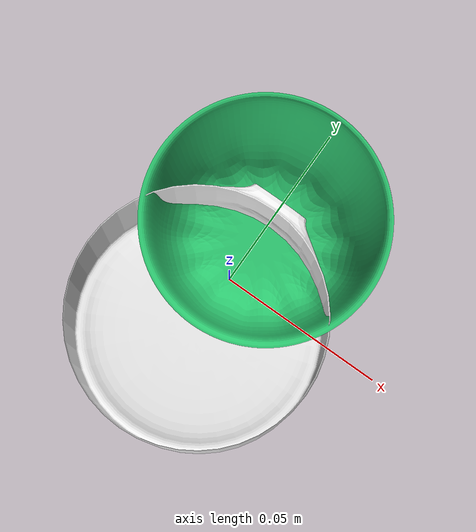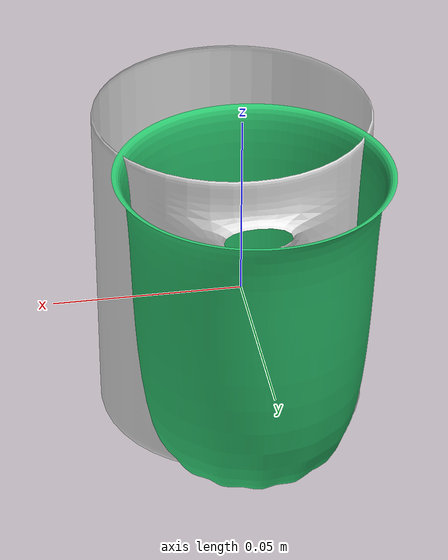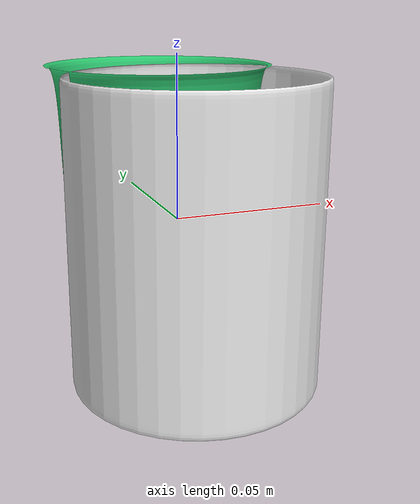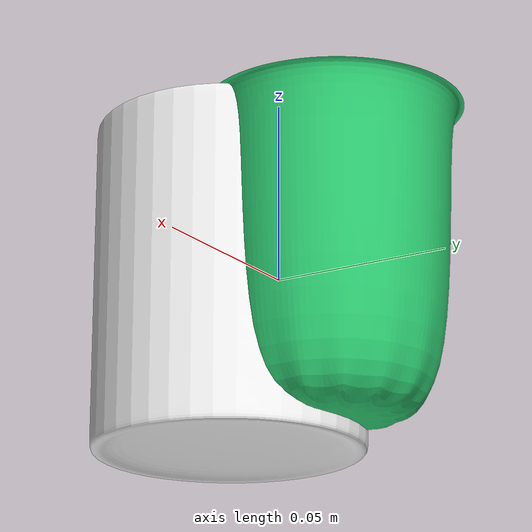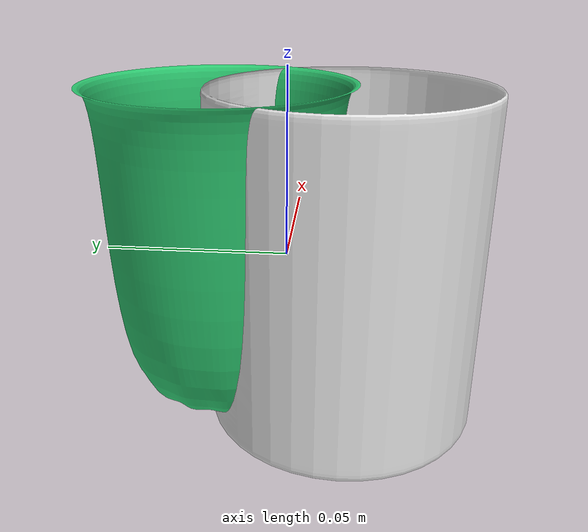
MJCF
<mujoco model="mug_12">
  <asset>
    <mesh file="visual/model_normalized_0.obj" name="model_normalized_0_vis" scale="0.10500000000000001 0.10500000000000001 0.10500000000000001" refquat="-0.7071067811865477 0.0 0.0 0.7071067811865474"/>
    <mesh file="visual/model_normalized_1.obj" name="model_normalized_1_vis" scale="0.10500000000000001 0.10500000000000001 0.10500000000000001" refquat="-0.7071067811865477 0.0 0.0 0.7071067811865474"/>
    <mesh file="collision/model_normalized_collision_22.obj" name="model_normalized_collision_22._coll" scale="0.10500000000000001 0.10500000000000001 0.10500000000000001" refquat="-0.7071067811865477 0.0 0.0 0.7071067811865474"/>
    <mesh file="collision/model_normalized_collision_23.obj" name="model_normalized_collision_23._coll" scale="0.10500000000000001 0.10500000000000001 0.10500000000000001" refquat="-0.7071067811865477 0.0 0.0 0.7071067811865474"/>
    <mesh file="collision/model_normalized_collision_21.obj" name="model_normalized_collision_21._coll" scale="0.10500000000000001 0.10500000000000001 0.10500000000000001" refquat="-0.7071067811865477 0.0 0.0 0.7071067811865474"/>
    <mesh file="collision/model_normalized_collision_20.obj" name="model_normalized_collision_20._coll" scale="0.10500000000000001 0.10500000000000001 0.10500000000000001" refquat="-0.7071067811865477 0.0 0.0 0.7071067811865474"/>
    <mesh file="collision/model_normalized_collision_24.obj" name="model_normalized_collision_24._coll" scale="0.10500000000000001 0.10500000000000001 0.10500000000000001" refquat="-0.7071067811865477 0.0 0.0 0.7071067811865474"/>
    <mesh file="collision/model_normalized_collision_30.obj" name="model_normalized_collision_30._coll" scale="0.10500000000000001 0.10500000000000001 0.10500000000000001" refquat="-0.7071067811865477 0.0 0.0 0.7071067811865474"/>
    <mesh file="collision/model_normalized_collision_18.obj" name="model_normalized_collision_18._coll" scale="0.10500000000000001 0.10500000000000001 0.10500000000000001" refquat="-0.7071067811865477 0.0 0.0 0.7071067811865474"/>
    <mesh file="collision/model_normalized_collision_19.obj" name="model_normalized_collision_19._coll" scale="0.10500000000000001 0.10500000000000001 0.10500000000000001" refquat="-0.7071067811865477 0.0 0.0 0.7071067811865474"/>
    <mesh file="collision/model_normalized_collision_31.obj" name="model_normalized_collision_31._coll" scale="0.10500000000000001 0.10500000000000001 0.10500000000000001" refquat="-0.7071067811865477 0.0 0.0 0.7071067811865474"/>
    <mesh file="collision/model_normalized_collision_25.obj" name="model_normalized_collision_25._coll" scale="0.10500000000000001 0.10500000000000001 0.10500000000000001" refquat="-0.7071067811865477 0.0 0.0 0.7071067811865474"/>
    <mesh file="collision/model_normalized_collision_27.obj" name="model_normalized_collision_27._coll" scale="0.10500000000000001 0.10500000000000001 0.10500000000000001" refquat="-0.7071067811865477 0.0 0.0 0.7071067811865474"/>
    <mesh file="collision/model_normalized_collision_26.obj" name="model_normalized_collision_26._coll" scale="0.10500000000000001 0.10500000000000001 0.10500000000000001" refquat="-0.7071067811865477 0.0 0.0 0.7071067811865474"/>
    <mesh file="collision/model_normalized_collision_9.obj" name="model_normalized_collision_9._coll" scale="0.10500000000000001 0.10500000000000001 0.10500000000000001" refquat="-0.7071067811865477 0.0 0.0 0.7071067811865474"/>
    <mesh file="collision/model_normalized_collision_8.obj" name="model_normalized_collision_8._coll" scale="0.10500000000000001 0.10500000000000001 0.10500000000000001" refquat="-0.7071067811865477 0.0 0.0 0.7071067811865474"/>
    <mesh file="collision/model_normalized_collision_6.obj" name="model_normalized_collision_6._coll" scale="0.10500000000000001 0.10500000000000001 0.10500000000000001" refquat="-0.7071067811865477 0.0 0.0 0.7071067811865474"/>
    <mesh file="collision/model_normalized_collision_7.obj" name="model_normalized_collision_7._coll" scale="0.10500000000000001 0.10500000000000001 0.10500000000000001" refquat="-0.7071067811865477 0.0 0.0 0.7071067811865474"/>
    <mesh file="collision/model_normalized_collision_5.obj" name="model_normalized_collision_5._coll" scale="0.10500000000000001 0.10500000000000001 0.10500000000000001" refquat="-0.7071067811865477 0.0 0.0 0.7071067811865474"/>
    <mesh file="collision/model_normalized_collision_4.obj" name="model_normalized_collision_4._coll" scale="0.10500000000000001 0.10500000000000001 0.10500000000000001" refquat="-0.7071067811865477 0.0 0.0 0.7071067811865474"/>
    <mesh file="collision/model_normalized_collision_0.obj" name="model_normalized_collision_0._coll" scale="0.10500000000000001 0.10500000000000001 0.10500000000000001" refquat="-0.7071067811865477 0.0 0.0 0.7071067811865474"/>
    <mesh file="collision/model_normalized_collision_1.obj" name="model_normalized_collision_1._coll" scale="0.10500000000000001 0.10500000000000001 0.10500000000000001" refquat="-0.7071067811865477 0.0 0.0 0.7071067811865474"/>
    <mesh file="collision/model_normalized_collision_3.obj" name="model_normalized_collision_3._coll" scale="0.10500000000000001 0.10500000000000001 0.10500000000000001" refquat="-0.7071067811865477 0.0 0.0 0.7071067811865474"/>
    <mesh file="collision/model_normalized_collision_2.obj" name="model_normalized_collision_2._coll" scale="0.10500000000000001 0.10500000000000001 0.10500000000000001" refquat="-0.7071067811865477 0.0 0.0 0.7071067811865474"/>
    <mesh file="collision/model_normalized_collision_17.obj" name="model_normalized_collision_17._coll" scale="0.10500000000000001 0.10500000000000001 0.10500000000000001" refquat="-0.7071067811865477 0.0 0.0 0.7071067811865474"/>
    <mesh file="collision/model_normalized_collision_16.obj" name="model_normalized_collision_16._coll" scale="0.10500000000000001 0.10500000000000001 0.10500000000000001" refquat="-0.7071067811865477 0.0 0.0 0.7071067811865474"/>
    <mesh file="collision/model_normalized_collision_28.obj" name="model_normalized_collision_28._coll" scale="0.10500000000000001 0.10500000000000001 0.10500000000000001" refquat="-0.7071067811865477 0.0 0.0 0.7071067811865474"/>
    <mesh file="collision/model_normalized_collision_14.obj" name="model_normalized_collision_14._coll" scale="0.10500000000000001 0.10500000000000001 0.10500000000000001" refquat="-0.7071067811865477 0.0 0.0 0.7071067811865474"/>
    <mesh file="collision/model_normalized_collision_15.obj" name="model_normalized_collision_15._coll" scale="0.10500000000000001 0.10500000000000001 0.10500000000000001" refquat="-0.7071067811865477 0.0 0.0 0.7071067811865474"/>
    <mesh file="collision/model_normalized_collision_29.obj" name="model_normalized_collision_29._coll" scale="0.10500000000000001 0.10500000000000001 0.10500000000000001" refquat="-0.7071067811865477 0.0 0.0 0.7071067811865474"/>
    <mesh file="collision/model_normalized_collision_11.obj" name="model_normalized_collision_11._coll" scale="0.10500000000000001 0.10500000000000001 0.10500000000000001" refquat="-0.7071067811865477 0.0 0.0 0.7071067811865474"/>
    <mesh file="collision/model_normalized_collision_10.obj" name="model_normalized_collision_10._coll" scale="0.10500000000000001 0.10500000000000001 0.10500000000000001" refquat="-0.7071067811865477 0.0 0.0 0.7071067811865474"/>
    <mesh file="collision/model_normalized_collision_12.obj" name="model_normalized_collision_12._coll" scale="0.10500000000000001 0.10500000000000001 0.10500000000000001" refquat="-0.7071067811865477 0.0 0.0 0.7071067811865474"/>
    <mesh file="collision/model_normalized_collision_13.obj" name="model_normalized_collision_13._coll" scale="0.10500000000000001 0.10500000000000001 0.10500000000000001" refquat="-0.7071067811865477 0.0 0.0 0.7071067811865474"/>
    <material name="Mat.1" specular="0.1" shininess="0.2" rgba="0.171600 0.780000 0.435240 1.0" emission="0.15"/>
    <material name="material.047" specular="0.1" shininess="0.2" rgba="0.930000 0.930000 0.930000 1.0" emission="0.15"/>
  </asset>
  <worldbody>
    <body>
      <body name="object">
        <geom density="0" friction="1.2 0.05 0.001" type="mesh" mesh="model_normalized_0_vis" conaffinity="0" contype="0" group="1" material="Mat.1" mass="0.3"/>
        <geom density="0" friction="1.2 0.05 0.001" type="mesh" mesh="model_normalized_1_vis" conaffinity="0" contype="0" group="1" material="material.047"/>
        <geom density="0" friction="1.2 0.05 0.001" type="mesh" mesh="model_normalized_collision_22._coll" group="3" rgba="0.8 0.8 0.8 0.0"/>
        <geom density="0" friction="1.2 0.05 0.001" type="mesh" mesh="model_normalized_collision_23._coll" group="3" rgba="0.8 0.8 0.8 0.0"/>
        <geom density="0" friction="1.2 0.05 0.001" type="mesh" mesh="model_normalized_collision_21._coll" group="3" rgba="0.8 0.8 0.8 0.0"/>
        <geom density="0" friction="1.2 0.05 0.001" type="mesh" mesh="model_normalized_collision_20._coll" group="3" rgba="0.8 0.8 0.8 0.0"/>
        <geom density="0" friction="1.2 0.05 0.001" type="mesh" mesh="model_normalized_collision_24._coll" group="3" rgba="0.8 0.8 0.8 0.0"/>
        <geom density="0" friction="1.2 0.05 0.001" type="mesh" mesh="model_normalized_collision_30._coll" group="3" rgba="0.8 0.8 0.8 0.0"/>
        <geom density="0" friction="1.2 0.05 0.001" type="mesh" mesh="model_normalized_collision_18._coll" group="3" rgba="0.8 0.8 0.8 0.0"/>
        <geom density="0" friction="1.2 0.05 0.001" type="mesh" mesh="model_normalized_collision_19._coll" group="3" rgba="0.8 0.8 0.8 0.0"/>
        <geom density="0" friction="1.2 0.05 0.001" type="mesh" mesh="model_normalized_collision_31._coll" group="3" rgba="0.8 0.8 0.8 0.0"/>
        <geom density="0" friction="1.2 0.05 0.001" type="mesh" mesh="model_normalized_collision_25._coll" group="3" rgba="0.8 0.8 0.8 0.0"/>
        <geom density="0" friction="1.2 0.05 0.001" type="mesh" mesh="model_normalized_collision_27._coll" group="3" rgba="0.8 0.8 0.8 0.0"/>
        <geom density="0" friction="1.2 0.05 0.001" type="mesh" mesh="model_normalized_collision_26._coll" group="3" rgba="0.8 0.8 0.8 0.0"/>
        <geom density="0" friction="1.2 0.05 0.001" type="mesh" mesh="model_normalized_collision_9._coll" group="3" rgba="0.8 0.8 0.8 0.0"/>
        <geom density="0" friction="1.2 0.05 0.001" type="mesh" mesh="model_normalized_collision_8._coll" group="3" rgba="0.8 0.8 0.8 0.0"/>
        <geom density="0" friction="1.2 0.05 0.001" type="mesh" mesh="model_normalized_collision_6._coll" group="3" rgba="0.8 0.8 0.8 0.0"/>
        <geom density="0" friction="1.2 0.05 0.001" type="mesh" mesh="model_normalized_collision_7._coll" group="3" rgba="0.8 0.8 0.8 0.0"/>
        <geom density="0" friction="1.2 0.05 0.001" type="mesh" mesh="model_normalized_collision_5._coll" group="3" rgba="0.8 0.8 0.8 0.0"/>
        <geom density="0" friction="1.2 0.05 0.001" type="mesh" mesh="model_normalized_collision_4._coll" group="3" rgba="0.8 0.8 0.8 0.0"/>
        <geom density="0" friction="1.2 0.05 0.001" type="mesh" mesh="model_normalized_collision_0._coll" group="3" rgba="0.8 0.8 0.8 0.0"/>
        <geom density="0" friction="1.2 0.05 0.001" type="mesh" mesh="model_normalized_collision_1._coll" group="3" rgba="0.8 0.8 0.8 0.0"/>
        <geom density="0" friction="1.2 0.05 0.001" type="mesh" mesh="model_normalized_collision_3._coll" group="3" rgba="0.8 0.8 0.8 0.0"/>
        <geom density="0" friction="1.2 0.05 0.001" type="mesh" mesh="model_normalized_collision_2._coll" group="3" rgba="0.8 0.8 0.8 0.0"/>
        <geom density="0" friction="1.2 0.05 0.001" type="mesh" mesh="model_normalized_collision_17._coll" group="3" rgba="0.8 0.8 0.8 0.0"/>
        <geom density="0" friction="1.2 0.05 0.001" type="mesh" mesh="model_normalized_collision_16._coll" group="3" rgba="0.8 0.8 0.8 0.0"/>
        <geom density="0" friction="1.2 0.05 0.001" type="mesh" mesh="model_normalized_collision_28._coll" group="3" rgba="0.8 0.8 0.8 0.0"/>
        <geom density="0" friction="1.2 0.05 0.001" type="mesh" mesh="model_normalized_collision_14._coll" group="3" rgba="0.8 0.8 0.8 0.0"/>
        <geom density="0" friction="1.2 0.05 0.001" type="mesh" mesh="model_normalized_collision_15._coll" group="3" rgba="0.8 0.8 0.8 0.0"/>
        <geom density="0" friction="1.2 0.05 0.001" type="mesh" mesh="model_normalized_collision_29._coll" group="3" rgba="0.8 0.8 0.8 0.0"/>
        <geom density="0" friction="1.2 0.05 0.001" type="mesh" mesh="model_normalized_collision_11._coll" group="3" rgba="0.8 0.8 0.8 0.0"/>
        <geom density="0" friction="1.2 0.05 0.001" type="mesh" mesh="model_normalized_collision_10._coll" group="3" rgba="0.8 0.8 0.8 0.0"/>
        <geom density="0" friction="1.2 0.05 0.001" type="mesh" mesh="model_normalized_collision_12._coll" group="3" rgba="0.8 0.8 0.8 0.0"/>
        <geom density="0" friction="1.2 0.05 0.001" type="mesh" mesh="model_normalized_collision_13._coll" group="3" rgba="0.8 0.8 0.8 0.0"/>
      </body>
      <site rgba="0 0 0 0" size="0.005" pos="-1.0192350000000489e-05 0.0004704882000000015 -0.045505232849999994" name="bottom_site"/>
      <site rgba="0 0 0 0" size="0.005" pos="-1.0192350000000489e-05 0.0004704882000000015 0.045505231800000004" name="top_site"/>
      <site rgba="0 0 0 0" size="0.005" pos="0.034246810499999995 0.052484715150000014 -5.249999997236632e-10" name="horizontal_radius_site"/>
    </body>
  </worldbody>
</mujoco>
